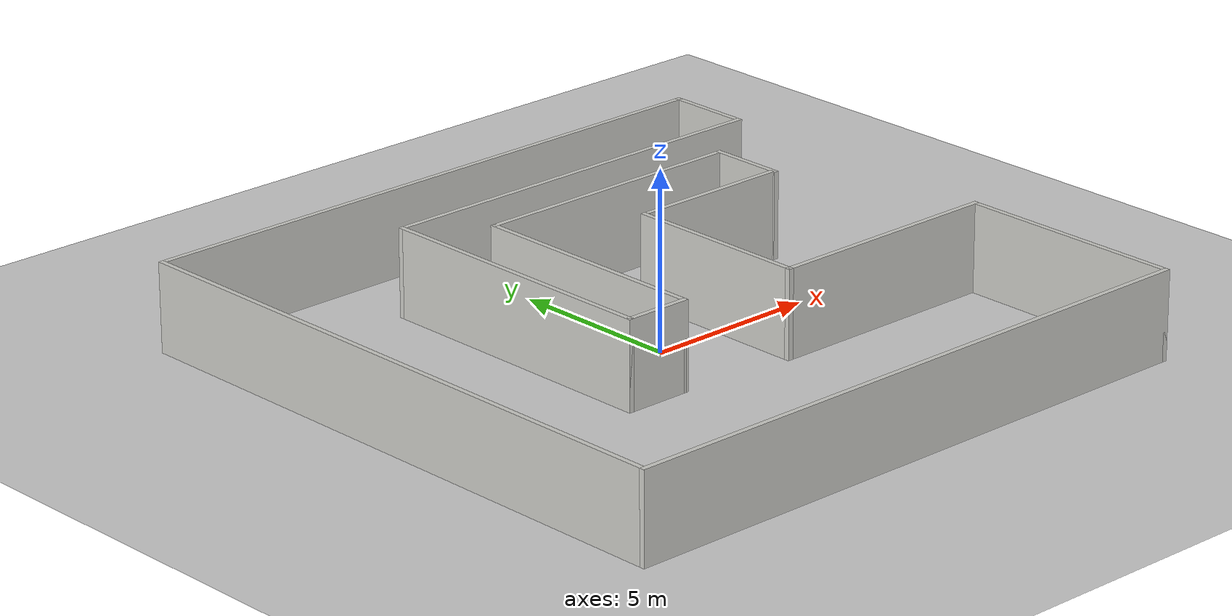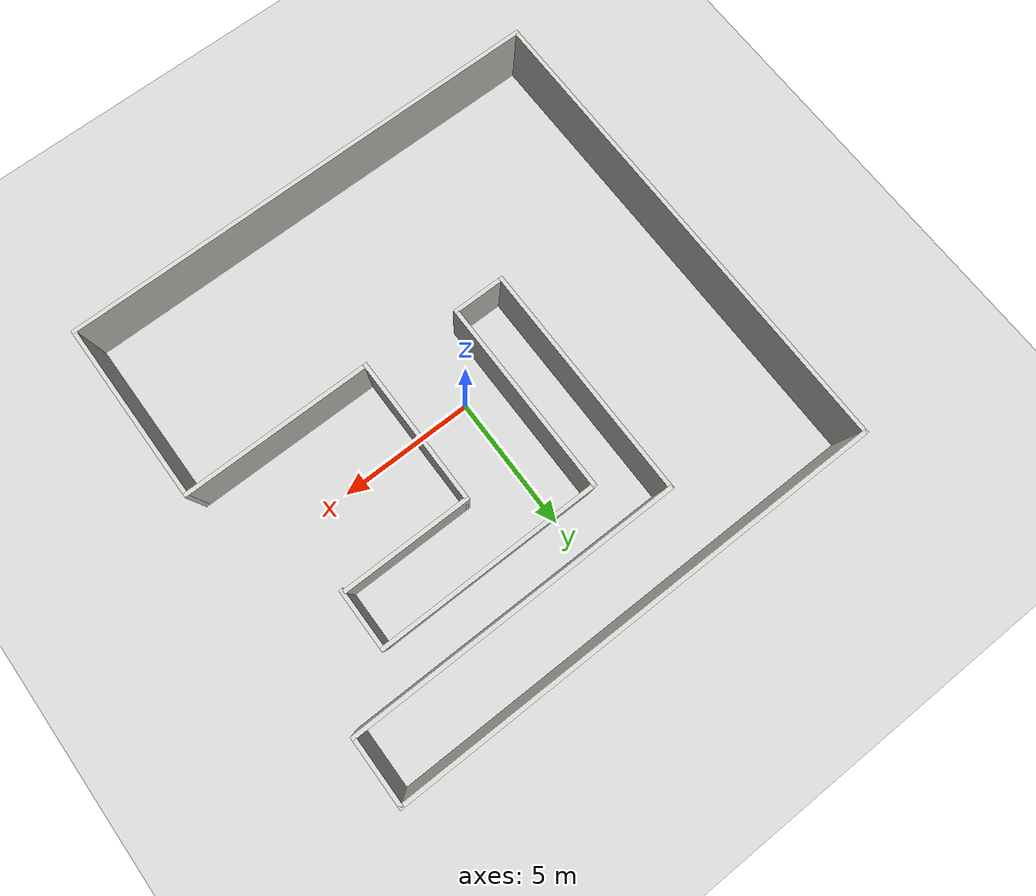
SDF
<sdf version="1.6">
 <world name="default">
  <light name="sun" type="directional">
   <pose>0 0 10 0 -0 0</pose>
   <diffuse>0.8 0.8 0.8 1</diffuse>
   <specular>0.2 0.2 0.2 1</specular>
   <attenuation>
    <range>1000</range>
    <constant>0.9</constant>
    <linear>0.01</linear>
    <quadratic>0.001</quadratic>
   </attenuation>
   <direction>-0.5 0.1 -0.9</direction>
   <spot><inner_angle>0</inner_angle><outer_angle>0</outer_angle><falloff>0</falloff></spot>
  </light>
  <model name="ground_plane">
   <static>1</static>
   <link name="link">
    <collision name="collision">
     <geometry><plane><normal>0 0 1</normal><size>100 100</size></plane></geometry>
     <surface><friction><ode><mu>100</mu><mu2>50</mu2></ode></friction></surface>
    </collision>
    <visual name="visual">
     <cast_shadows>0</cast_shadows>
     <geometry><plane><normal>0 0 1</normal><size>100 100</size></plane></geometry>
     <material>
      <script><uri>file://media/materials/scripts/gazebo.material</uri><name>Gazebo/Grey</name></script>
     </material>
    </visual>
   </link>
  </model>
  <gravity>0 0 -9.8</gravity>
  <magnetic_field>6e-06 2.3e-05 -4.2e-05</magnetic_field>
  <atmosphere type="adiabatic"/>
  <physics type="ode">
   <max_step_size>0.001</max_step_size>
   <real_time_factor>1</real_time_factor>
   <real_time_update_rate>1000</real_time_update_rate>
  </physics>
  <scene><ambient>0.4 0.4 0.4 1</ambient><background>0.7 0.7 0.7 1</background><shadows>1</shadows></scene>
  <spherical_coordinates>
   <surface_model>EARTH_WGS84</surface_model>
   <latitude_deg>0</latitude_deg>
   <longitude_deg>0</longitude_deg>
   <elevation>0</elevation>
   <heading_deg>0</heading_deg>
  </spherical_coordinates>
  <model name="Walls">
   <pose>-0.140728 -0.247755 0 0 -0 0</pose>
   <link name="Wall_1">
    <collision name="Wall_1_Collision">
     <geometry><box><size>18 0.15 2.5</size></box></geometry>
     <pose>0 0 1.25 0 -0 0</pose>
    </collision>
    <visual name="Wall_1_Visual">
     <pose>0 0 1.25 0 -0 0</pose>
     <geometry><box><size>18 0.15 2.5</size></box></geometry>
     <material>
      <script><uri>file://media/materials/scripts/gazebo.material</uri><name>Gazebo/CeilingTiled</name></script>
      <ambient>1 1 1 1</ambient>
     </material>
     <meta><layer>0</layer></meta>
    </visual>
    <pose>-9.05 0 0 0 -0 1.5708</pose>
   </link>
   <link name="Wall_17">
    <collision name="Wall_17_Collision">
     <geometry><box><size>18.25 0.15 2.5</size></box></geometry>
     <pose>0 0 1.25 0 -0 0</pose>
    </collision>
    <visual name="Wall_17_Visual">
     <pose>0 0 1.25 0 -0 0</pose>
     <geometry><box><size>18.25 0.15 2.5</size></box></geometry>
     <material>
      <script><uri>file://media/materials/scripts/gazebo.material</uri><name>Gazebo/CeilingTiled</name></script>
      <ambient>1 1 1 1</ambient>
     </material>
     <meta><layer>0</layer></meta>
    </visual>
    <pose>0 8.925 0 0 -0 0</pose>
   </link>
   <link name="Wall_21">
    <collision name="Wall_21_Collision">
     <geometry><box><size>2.5 0.15 2.5</size></box></geometry>
     <pose>0 0 1.25 0 -0 0</pose>
    </collision>
    <visual name="Wall_21_Visual">
     <pose>0 0 1.25 0 -0 0</pose>
     <geometry><box><size>2.5 0.15 2.5</size></box></geometry>
     <material>
      <script><uri>file://media/materials/scripts/gazebo.material</uri><name>Gazebo/CeilingTiled</name></script>
      <ambient>1 1 1 1</ambient>
     </material>
     <meta><layer>0</layer></meta>
    </visual>
    <pose>9.05 7.75 0 0 -0 -1.5708</pose>
   </link>
   <link name="Wall_23">
    <collision name="Wall_23_Collision">
     <geometry><box><size>12.25 0.15 2.5</size></box></geometry>
     <pose>0 0 1.25 0 -0 0</pose>
    </collision>
    <visual name="Wall_23_Visual">
     <pose>0 0 1.25 0 -0 0</pose>
     <geometry><box><size>12.25 0.15 2.5</size></box></geometry>
     <material>
      <script><uri>file://media/materials/scripts/gazebo.material</uri><name>Gazebo/CeilingTiled</name></script>
      <ambient>1 1 1 1</ambient>
     </material>
     <meta><layer>0</layer></meta>
    </visual>
    <pose>3 6.575 0 0 -0 3.14159</pose>
   </link>
   <link name="Wall_24">
    <collision name="Wall_24_Collision">
     <geometry><box><size>8.75 0.15 2.5</size></box></geometry>
     <pose>0 0 1.25 0 -0 0</pose>
    </collision>
    <visual name="Wall_24_Visual">
     <pose>0 0 1.25 0 -0 0</pose>
     <geometry><box><size>8.75 0.15 2.5</size></box></geometry>
     <material>
      <script><uri>file://media/materials/scripts/gazebo.material</uri><name>Gazebo/CeilingTiled</name></script>
      <ambient>1 1 1 1</ambient>
     </material>
     <meta><layer>0</layer></meta>
    </visual>
    <pose>-3.05 2.275 0 0 -0 -1.5708</pose>
   </link>
   <link name="Wall_25">
    <collision name="Wall_25_Collision">
     <geometry><box><size>2 0.15 2.5</size></box></geometry>
     <pose>0 0 1.25 0 -0 0</pose>
    </collision>
    <visual name="Wall_25_Visual">
     <pose>0 0 1.25 0 -0 0</pose>
     <geometry><box><size>2 0.15 2.5</size></box></geometry>
     <material>
      <script><uri>file://media/materials/scripts/gazebo.material</uri><name>Gazebo/CeilingTiled</name></script>
      <ambient>1 1 1 1</ambient>
     </material>
     <meta><layer>0</layer></meta>
    </visual>
    <pose>-2.125 -2.025 0 0 -0 0</pose>
   </link>
   <link name="Wall_28">
    <collision name="Wall_28_Collision">
     <geometry><box><size>7.25 0.15 2.5</size></box></geometry>
     <pose>0 0 1.25 0 -0 0</pose>
    </collision>
    <visual name="Wall_28_Visual">
     <pose>0 0 1.25 0 -0 0</pose>
     <geometry><box><size>7.25 0.15 2.5</size></box></geometry>
     <material>
      <script><uri>file://media/materials/scripts/gazebo.material</uri><name>Gazebo/CeilingTiled</name></script>
      <ambient>1 1 1 1</ambient>
     </material>
     <meta><layer>0</layer></meta>
    </visual>
    <pose>-1.2 1.525 0 0 -0 1.5708</pose>
   </link>
   <link name="Wall_29">
    <collision name="Wall_29_Collision">
     <geometry><box><size>8.25 0.15 2.5</size></box></geometry>
     <pose>0 0 1.25 0 -0 0</pose>
    </collision>
    <visual name="Wall_29_Visual">
     <pose>0 0 1.25 0 -0 0</pose>
     <geometry><box><size>8.25 0.15 2.5</size></box></geometry>
     <material>
      <script><uri>file://media/materials/scripts/gazebo.material</uri><name>Gazebo/CeilingTiled</name></script>
      <ambient>1 1 1 1</ambient>
     </material>
     <meta><layer>0</layer></meta>
    </visual>
    <pose>2.85 5.075 0 0 -0 0</pose>
   </link>
   <link name="Wall_3">
    <collision name="Wall_3_Collision">
     <geometry><box><size>18.25 0.15 2.5</size></box></geometry>
     <pose>0 0 1.25 0 -0 0</pose>
    </collision>
    <visual name="Wall_3_Visual">
     <pose>0 0 1.25 0 -0 0</pose>
     <geometry><box><size>18.25 0.15 2.5</size></box></geometry>
     <material>
      <script><uri>file://media/materials/scripts/gazebo.material</uri><name>Gazebo/CeilingTiled</name></script>
      <ambient>1 1 1 1</ambient>
     </material>
     <meta><layer>0</layer></meta>
    </visual>
    <pose>0 -8.925 0 0 -0 0</pose>
   </link>
   <link name="Wall_30">
    <collision name="Wall_30_Collision">
     <geometry><box><size>2.25 0.15 2.5</size></box></geometry>
     <pose>0 0 1.25 0 -0 0</pose>
    </collision>
    <visual name="Wall_30_Visual">
     <pose>0 0 1.25 0 -0 0</pose>
     <geometry><box><size>2.25 0.15 2.5</size></box></geometry>
     <material>
      <script><uri>file://media/materials/scripts/gazebo.material</uri><name>Gazebo/CeilingTiled</name></script>
      <ambient>1 1 1 1</ambient>
     </material>
     <meta><layer>0</layer></meta>
    </visual>
    <pose>6.9 4.025 0 0 -0 -1.5708</pose>
   </link>
   <link name="Wall_5">
    <collision name="Wall_5_Collision">
     <geometry><box><size>6.75 0.15 2.5</size></box></geometry>
     <pose>0 0 1.25 0 -0 0</pose>
    </collision>
    <visual name="Wall_5_Visual">
     <pose>0 0 1.25 0 -0 0</pose>
     <geometry><box><size>6.75 0.15 2.5</size></box></geometry>
     <material>
      <script><uri>file://media/materials/scripts/gazebo.material</uri><name>Gazebo/CeilingTiled</name></script>
      <ambient>1 1 1 1</ambient>
     </material>
     <meta><layer>0</layer></meta>
    </visual>
    <pose>9.05 -5.625 0 0 -0 1.5708</pose>
   </link>
   <link name="Wall_6">
    <collision name="Wall_6_Collision">
     <geometry><box><size>7 0.15 2.5</size></box></geometry>
     <pose>0 0 1.25 0 -0 0</pose>
    </collision>
    <visual name="Wall_6_Visual">
     <pose>0 0 1.25 0 -0 0</pose>
     <geometry><box><size>7 0.15 2.5</size></box></geometry>
     <material>
      <script><uri>file://media/materials/scripts/gazebo.material</uri><name>Gazebo/CeilingTiled</name></script>
      <ambient>1 1 1 1</ambient>
     </material>
     <meta><layer>0</layer></meta>
    </visual>
    <pose>5.625 -2.325 0 0 -0 3.14159</pose>
   </link>
   <link name="Wall_7">
    <collision name="Wall_7_Collision">
     <geometry><box><size>5.5 0.15 2.5</size></box></geometry>
     <pose>0 0 1.25 0 -0 0</pose>
    </collision>
    <visual name="Wall_7_Visual">
     <pose>0 0 1.25 0 -0 0</pose>
     <geometry><box><size>5.5 0.15 2.5</size></box></geometry>
     <material>
      <script><uri>file://media/materials/scripts/gazebo.material</uri><name>Gazebo/CeilingTiled</name></script>
      <ambient>1 1 1 1</ambient>
     </material>
     <meta><layer>0</layer></meta>
    </visual>
    <pose>2.2 0.35 0 0 -0 1.5708</pose>
   </link>
   <link name="Wall_8">
    <collision name="Wall_8_Collision">
     <geometry><box><size>4.75 0.15 2.5</size></box></geometry>
     <pose>0 0 1.25 0 -0 0</pose>
    </collision>
    <visual name="Wall_8_Visual">
     <pose>0 0 1.25 0 -0 0</pose>
     <geometry><box><size>4.75 0.15 2.5</size></box></geometry>
     <material>
      <script><uri>file://media/materials/scripts/gazebo.material</uri><name>Gazebo/CeilingTiled</name></script>
      <ambient>1 1 1 1</ambient>
     </material>
     <meta><layer>0</layer></meta>
    </visual>
    <pose>4.5 3.025 0 0 -0 0</pose>
   </link>
   <static>1</static>
  </model>
 </world>
</sdf>
